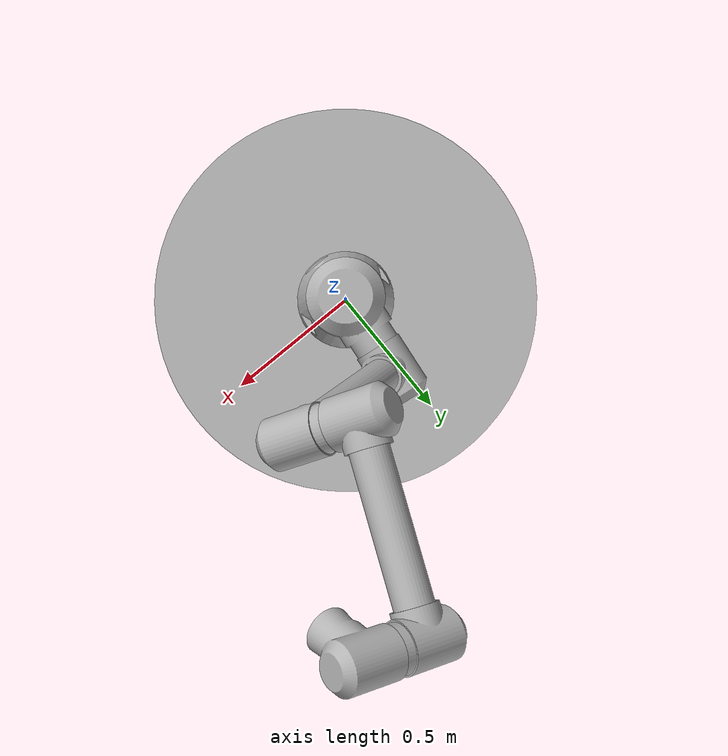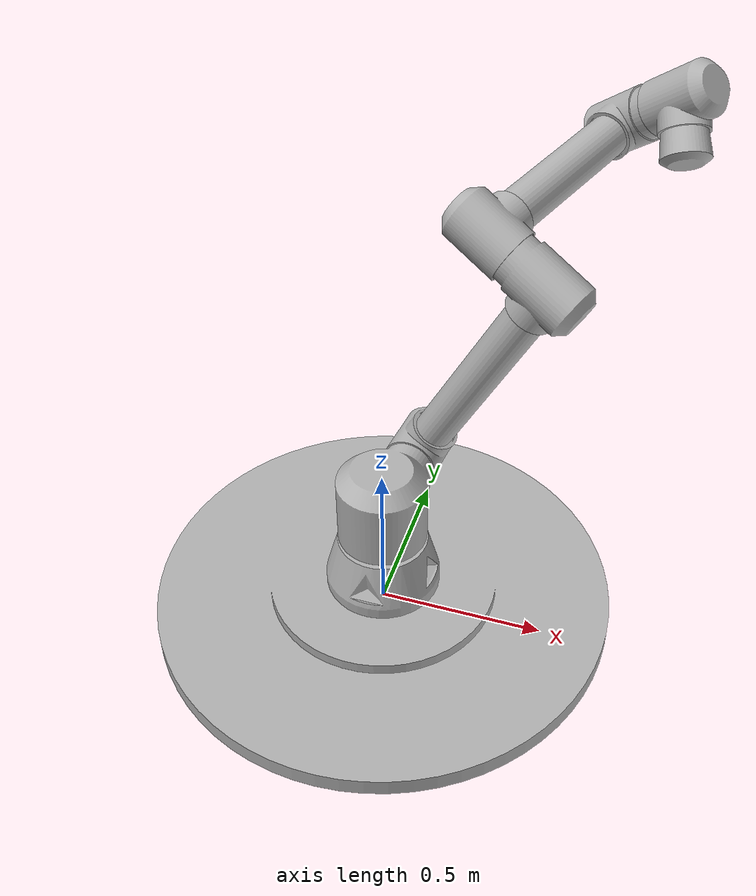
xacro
<?xml version="1.0" ?>
<robot name="elegriparm" xmlns:xacro="http://www.ros.org/wiki/xacro">

<xacro:include filename="$(find elegriparm_description)/urdf/materials.xacro" />
<xacro:include filename="$(find elegriparm_description)/urdf/elegriparm.trans" />
<xacro:include filename="$(find elegriparm_description)/urdf/elegriparm.gazebo" />
<link name="base_link">
  <inertial>
    <origin xyz="-2.6378267994893178e-05 -2.9829049308323106e-05 0.04524163925089377" rpy="0 0 0"/>
    <mass value="855.6902182513435"/>
    <inertia ixx="88.194887" iyy="88.185464" izz="173.450328" ixy="-0.004914" iyz="0.003488" ixz="0.003004"/>
  </inertial>
  <visual>
    <origin xyz="0 0 0" rpy="0 0 0"/>
    <geometry>
      <mesh filename="package://elegriparm_description/meshes/base_link.stl" scale="0.001 0.001 0.001"/>
    </geometry>
    <material name="silver"/>
  </visual>
  <collision>
    <origin xyz="0 0 0" rpy="0 0 0"/>
    <geometry>
      <mesh filename="package://elegriparm_description/meshes/base_link.stl" scale="0.001 0.001 0.001"/>
    </geometry>
  </collision>
</link>

<link name="link1_1">
  <inertial>
    <origin xyz="0.0019996208577283126 0.019318586019012794 0.20074728180211923" rpy="0 0 0"/>
    <mass value="162.8353483389851"/>
    <inertia ixx="2.737982" iyy="2.220729" izz="1.773971" ixy="-0.054246" iyz="-0.104189" ixz="-0.010784"/>
  </inertial>
  <visual>
    <origin xyz="-0.0 -0.0 -0.155" rpy="0 0 0"/>
    <geometry>
      <mesh filename="package://elegriparm_description/meshes/link1_1.stl" scale="0.001 0.001 0.001"/>
    </geometry>
    <material name="silver"/>
  </visual>
  <collision>
    <origin xyz="-0.0 -0.0 -0.155" rpy="0 0 0"/>
    <geometry>
      <mesh filename="package://elegriparm_description/meshes/link1_1.stl" scale="0.001 0.001 0.001"/>
    </geometry>
  </collision>
</link>

<link name="link2_1">
  <inertial>
    <origin xyz="0.3000261646003874 0.4659776146496854 -0.0297870766062745" rpy="0 0 0"/>
    <mass value="16.3345971734594"/>
    <inertia ixx="0.084027" iyy="0.074334" izz="0.07839" ixy="0.00474" iyz="0.010172" ixz="-0.003153"/>
  </inertial>
  <visual>
    <origin xyz="0.25609 0.126556 -0.430868" rpy="0 0 0"/>
    <geometry>
      <mesh filename="package://elegriparm_description/meshes/link2_1.stl" scale="0.001 0.001 0.001"/>
    </geometry>
    <material name="silver"/>
  </visual>
  <collision>
    <origin xyz="0.25609 0.126556 -0.430868" rpy="0 0 0"/>
    <geometry>
      <mesh filename="package://elegriparm_description/meshes/link2_1.stl" scale="0.001 0.001 0.001"/>
    </geometry>
  </collision>
</link>

<link name="link3_1">
  <inertial>
    <origin xyz="0.14597859697392285 -0.01641953728317086 0.2786496741885313" rpy="0 0 0"/>
    <mass value="58.287075422588"/>
    <inertia ixx="1.580225" iyy="1.977422" izz="0.51671" ixy="0.045249" iyz="0.086374" ixz="-0.767901"/>
  </inertial>
  <visual>
    <origin xyz="-0.075858 -0.28662 -0.470215" rpy="0 0 0"/>
    <geometry>
      <mesh filename="package://elegriparm_description/meshes/link3_1.stl" scale="0.001 0.001 0.001"/>
    </geometry>
    <material name="silver"/>
  </visual>
  <collision>
    <origin xyz="-0.075858 -0.28662 -0.470215" rpy="0 0 0"/>
    <geometry>
      <mesh filename="package://elegriparm_description/meshes/link3_1.stl" scale="0.001 0.001 0.001"/>
    </geometry>
  </collision>
</link>

<link name="link4_1">
  <inertial>
    <origin xyz="0.1933846278170719 0.19334037634426404 0.009724454889752376" rpy="0 0 0"/>
    <mass value="61.145733834937005"/>
    <inertia ixx="0.399071" iyy="0.768182" izz="0.671599" ixy="0.150612" iyz="-0.085824" ixz="0.23894"/>
  </inertial>
  <visual>
    <origin xyz="-0.136018 -0.076884 -1.083035" rpy="0 0 0"/>
    <geometry>
      <mesh filename="package://elegriparm_description/meshes/link4_1.stl" scale="0.001 0.001 0.001"/>
    </geometry>
    <material name="silver"/>
  </visual>
  <collision>
    <origin xyz="-0.136018 -0.076884 -1.083035" rpy="0 0 0"/>
    <geometry>
      <mesh filename="package://elegriparm_description/meshes/link4_1.stl" scale="0.001 0.001 0.001"/>
    </geometry>
  </collision>
</link>

<link name="link5_1">
  <inertial>
    <origin xyz="0.0048577051841588725 0.0132170971265827 0.0014246694726254283" rpy="0 0 0"/>
    <mass value="16.33458651273331"/>
    <inertia ixx="0.070079" iyy="0.082482" izz="0.084189" ixy="-0.008299" iyz="0.003074" ixz="0.004685"/>
  </inertial>
  <visual>
    <origin xyz="-0.163672 -0.329287 -1.18733" rpy="0 0 0"/>
    <geometry>
      <mesh filename="package://elegriparm_description/meshes/link5_1.stl" scale="0.001 0.001 0.001"/>
    </geometry>
    <material name="silver"/>
  </visual>
  <collision>
    <origin xyz="-0.163672 -0.329287 -1.18733" rpy="0 0 0"/>
    <geometry>
      <mesh filename="package://elegriparm_description/meshes/link5_1.stl" scale="0.001 0.001 0.001"/>
    </geometry>
  </collision>
</link>

<link name="link6_1">
  <inertial>
    <origin xyz="0.09569963795969719 0.22352333770140004 0.03006401109069179" rpy="0 0 0"/>
    <mass value="47.776682043389435"/>
    <inertia ixx="0.864508" iyy="0.246777" izz="0.989472" ixy="-0.323836" iyz="-0.101734" ixz="-0.043556"/>
  </inertial>
  <visual>
    <origin xyz="-0.239874 -0.400051 -1.175159" rpy="0 0 0"/>
    <geometry>
      <mesh filename="package://elegriparm_description/meshes/link6_1.stl" scale="0.001 0.001 0.001"/>
    </geometry>
    <material name="silver"/>
  </visual>
  <collision>
    <origin xyz="-0.239874 -0.400051 -1.175159" rpy="0 0 0"/>
    <geometry>
      <mesh filename="package://elegriparm_description/meshes/link6_1.stl" scale="0.001 0.001 0.001"/>
    </geometry>
  </collision>
</link>

<link name="link7_1">
  <inertial>
    <origin xyz="0.08375529761087863 0.055139305957648155 0.04980385889151839" rpy="0 0 0"/>
    <mass value="62.39336668118014"/>
    <inertia ixx="0.512747" iyy="0.747456" izz="0.618269" ixy="0.157422" iyz="0.132646" ixz="-0.266844"/>
  </inertial>
  <visual>
    <origin xyz="-0.431273 -0.847098 -1.235287" rpy="0 0 0"/>
    <geometry>
      <mesh filename="package://elegriparm_description/meshes/link7_1.stl" scale="0.001 0.001 0.001"/>
    </geometry>
    <material name="silver"/>
  </visual>
  <collision>
    <origin xyz="-0.431273 -0.847098 -1.235287" rpy="0 0 0"/>
    <geometry>
      <mesh filename="package://elegriparm_description/meshes/link7_1.stl" scale="0.001 0.001 0.001"/>
    </geometry>
  </collision>
</link>

<link name="link8_1">
  <inertial>
    <origin xyz="0.0023300272081858697 -0.03681932928139231 -0.06041205816796835" rpy="0 0 0"/>
    <mass value="28.09297060145581"/>
    <inertia ixx="0.236562" iyy="0.210699" izz="0.122876" ixy="-0.004552" iyz="-0.055219" ixz="-0.010576"/>
  </inertial>
  <visual>
    <origin xyz="-0.657663 -0.829363 -1.403017" rpy="0 0 0"/>
    <geometry>
      <mesh filename="package://elegriparm_description/meshes/link8_1.stl" scale="0.001 0.001 0.001"/>
    </geometry>
    <material name="silver"/>
  </visual>
  <collision>
    <origin xyz="-0.657663 -0.829363 -1.403017" rpy="0 0 0"/>
    <geometry>
      <mesh filename="package://elegriparm_description/meshes/link8_1.stl" scale="0.001 0.001 0.001"/>
    </geometry>
  </collision>
</link>

<joint name="Rev46" type="continuous">
  <origin xyz="0.0 0.0 0.155" rpy="0 0 0"/>
  <parent link="base_link"/>
  <child link="link1_1"/>
  <axis xyz="0.0 0.0 1.0"/>
</joint>

<joint name="Rev47" type="continuous">
  <origin xyz="-0.25609 -0.126556 0.275868" rpy="0 0 0"/>
  <parent link="link1_1"/>
  <child link="link2_1"/>
  <axis xyz="0.111776 0.993733 -0.0"/>
</joint>

<joint name="Rev48" type="continuous">
  <origin xyz="0.331948 0.413176 0.039347" rpy="0 0 0"/>
  <parent link="link2_1"/>
  <child link="link3_1"/>
  <axis xyz="0.463424 -0.052126 0.884602"/>
</joint>

<joint name="Rev49" type="continuous">
  <origin xyz="0.06016 -0.209736 0.61282" rpy="0 0 0"/>
  <parent link="link3_1"/>
  <child link="link4_1"/>
  <axis xyz="0.463424 -0.052126 0.884602"/>
</joint>

<joint name="Rev50" type="continuous">
  <origin xyz="0.027654 0.252403 0.104295" rpy="0 0 0"/>
  <parent link="link4_1"/>
  <child link="link5_1"/>
  <axis xyz="-0.838377 0.297512 0.456739"/>
</joint>

<joint name="Rev51" type="continuous">
  <origin xyz="0.076202 0.070764 -0.012171" rpy="0 0 0"/>
  <parent link="link5_1"/>
  <child link="link6_1"/>
  <axis xyz="0.39061 0.912341 0.122711"/>
</joint>

<joint name="Rev52" type="continuous">
  <origin xyz="0.191399 0.447047 0.060128" rpy="0 0 0"/>
  <parent link="link6_1"/>
  <child link="link7_1"/>
  <axis xyz="0.39061 0.912341 0.122711"/>
</joint>

<joint name="Rev53" type="continuous">
  <origin xyz="0.22639 -0.017735 0.16773" rpy="0 0 0"/>
  <parent link="link7_1"/>
  <child link="link8_1"/>
  <axis xyz="0.709495 -0.383301 0.591351"/>
</joint>

</robot>

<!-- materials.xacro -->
<robot name="elegriparm" xmlns:xacro="http://www.ros.org/wiki/xacro" >

<material name="silver">
  <color rgba="0.700 0.700 0.700 1.000"/>
</material>

</robot>

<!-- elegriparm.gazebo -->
<robot name="elegriparm" xmlns:xacro="http://www.ros.org/wiki/xacro" >

<xacro:property name="body_color" value="Gazebo/Silver" />

<gazebo>
  <plugin name="control" filename="libgazebo_ros_control.so"/>
</gazebo>
<gazebo reference="base_link">
  <material>${body_color}</material>
  <mu1>0.2</mu1>
  <mu2>0.2</mu2>
  <selfCollide>true</selfCollide>
  <gravity>true</gravity>
</gazebo>

<gazebo reference="link1_1">
  <material>${body_color}</material>
  <mu1>0.2</mu1>
  <mu2>0.2</mu2>
  <selfCollide>true</selfCollide>
</gazebo>

<gazebo reference="link2_1">
  <material>${body_color}</material>
  <mu1>0.2</mu1>
  <mu2>0.2</mu2>
  <selfCollide>true</selfCollide>
</gazebo>

<gazebo reference="link3_1">
  <material>${body_color}</material>
  <mu1>0.2</mu1>
  <mu2>0.2</mu2>
  <selfCollide>true</selfCollide>
</gazebo>

<gazebo reference="link4_1">
  <material>${body_color}</material>
  <mu1>0.2</mu1>
  <mu2>0.2</mu2>
  <selfCollide>true</selfCollide>
</gazebo>

<gazebo reference="link5_1">
  <material>${body_color}</material>
  <mu1>0.2</mu1>
  <mu2>0.2</mu2>
  <selfCollide>true</selfCollide>
</gazebo>

<gazebo reference="link6_1">
  <material>${body_color}</material>
  <mu1>0.2</mu1>
  <mu2>0.2</mu2>
  <selfCollide>true</selfCollide>
</gazebo>

<gazebo reference="link7_1">
  <material>${body_color}</material>
  <mu1>0.2</mu1>
  <mu2>0.2</mu2>
  <selfCollide>true</selfCollide>
</gazebo>

<gazebo reference="link8_1">
  <material>${body_color}</material>
  <mu1>0.2</mu1>
  <mu2>0.2</mu2>
  <selfCollide>true</selfCollide>
</gazebo>

</robot>
